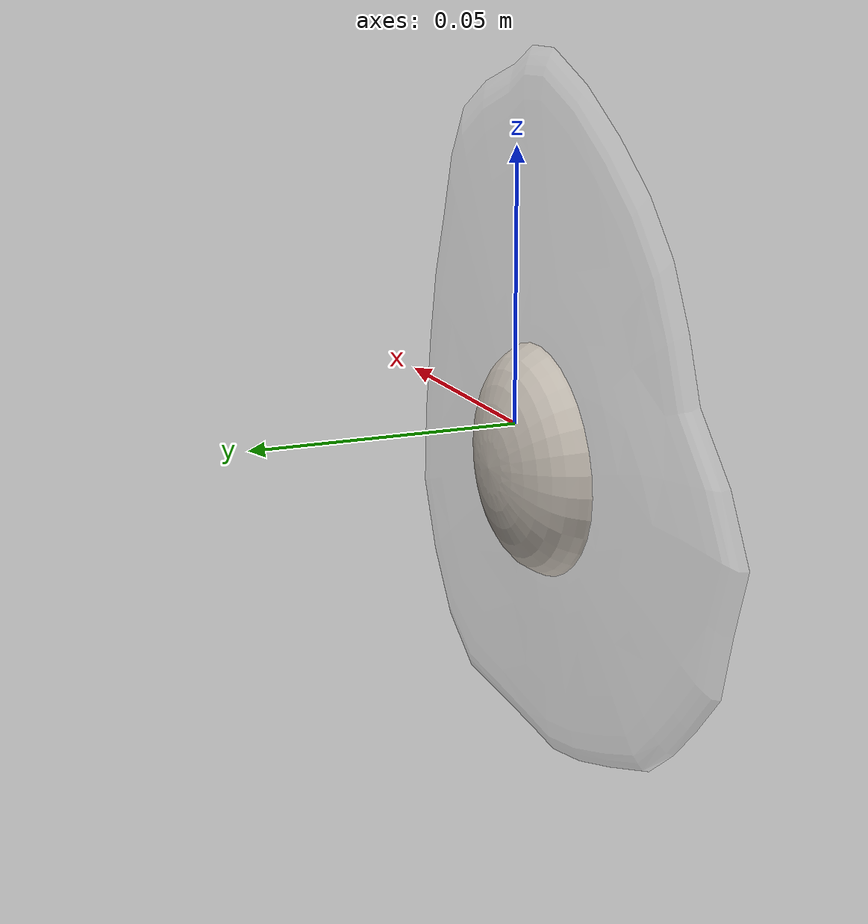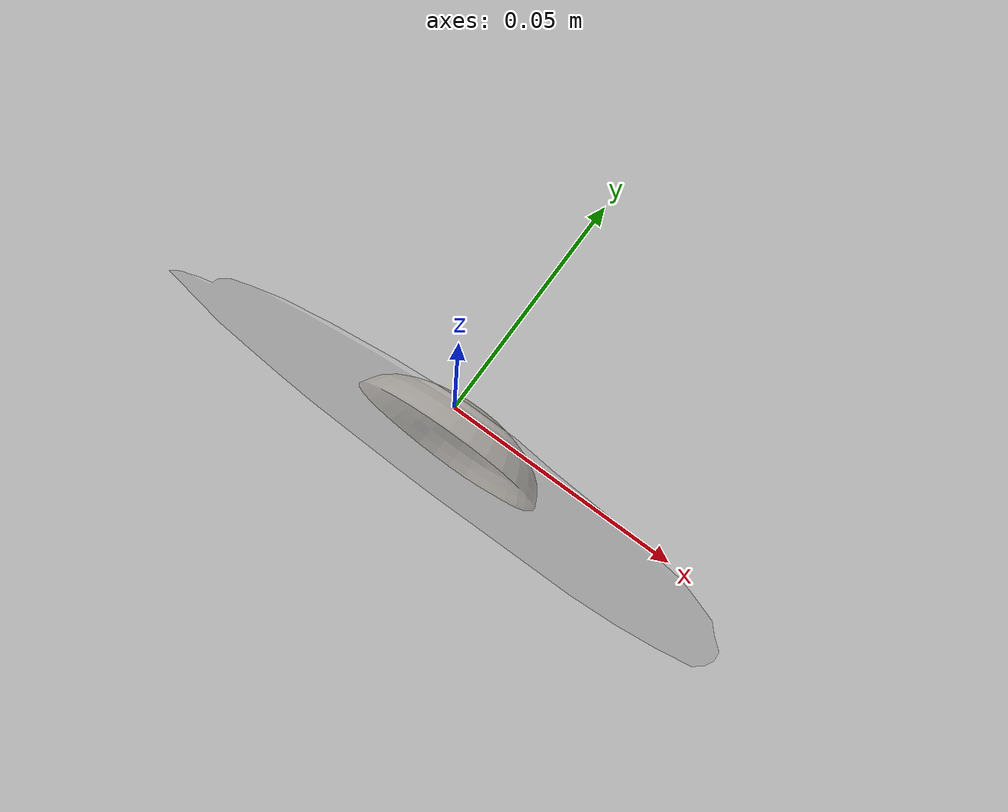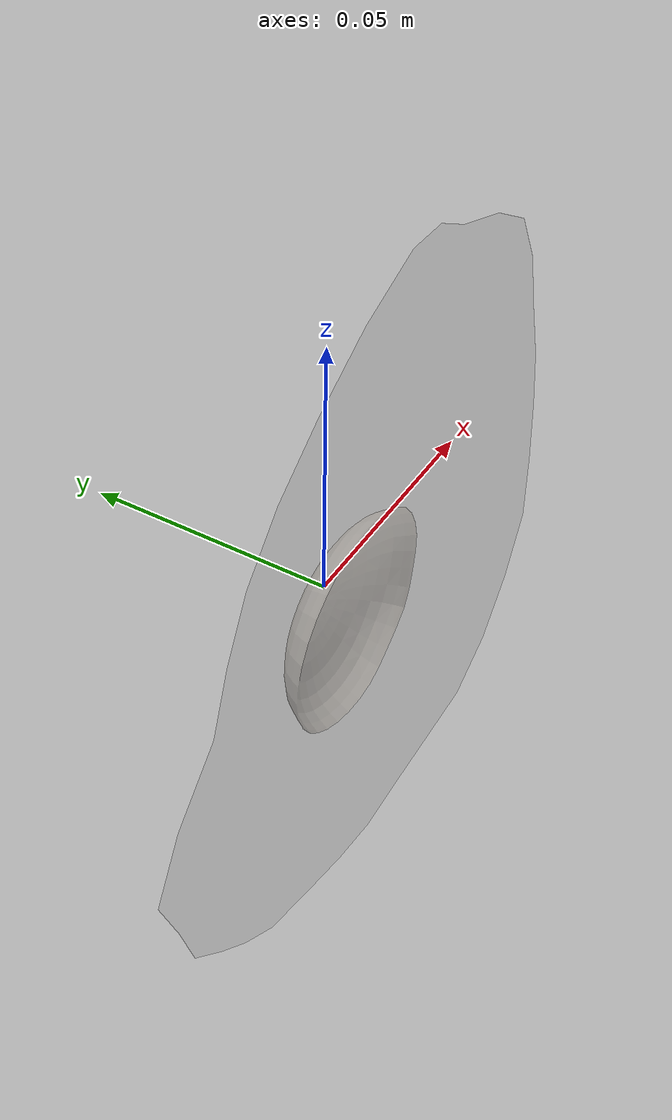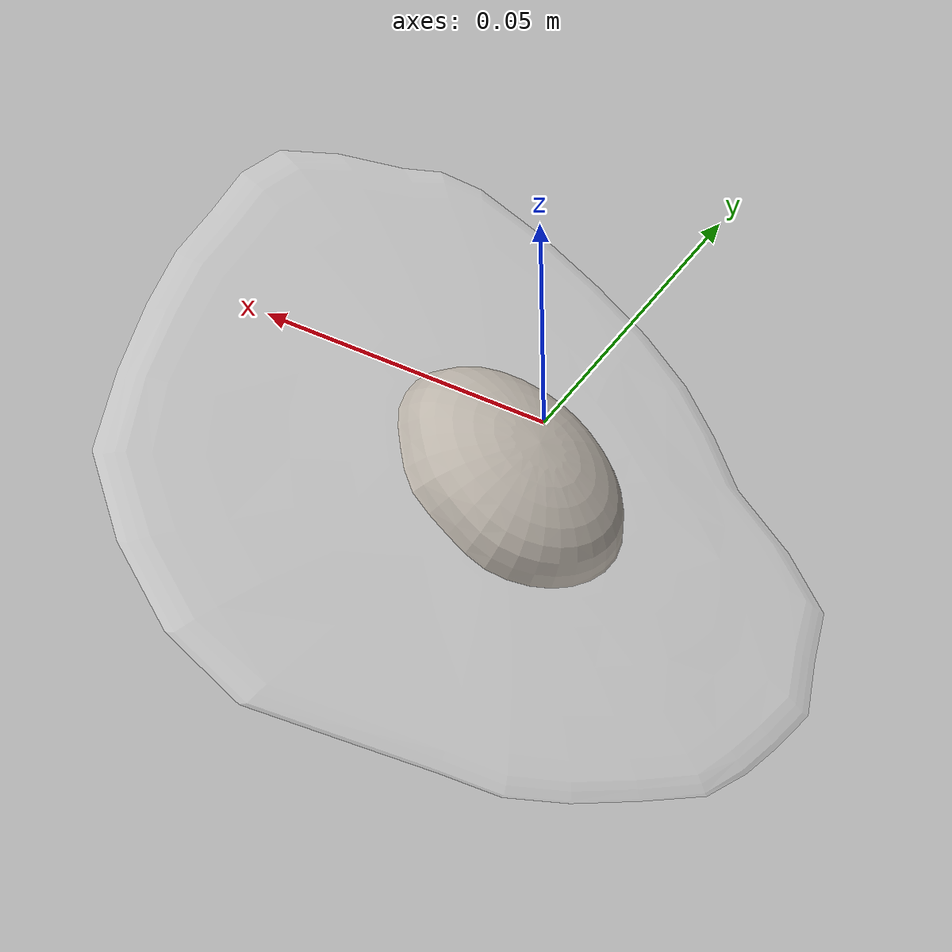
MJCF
<mujoco model="Egg_Cracked_12">
  <compiler autolimits="true" boundmass="0.01" angle="radian"/>
  <default>
    <default class="/">
      <default class="__VISUAL_MJT__">
        <geom contype="0" conaffinity="0" group="0"/>
      </default>
      <default class="__STRUCTURAL_MJT__">
        <geom contype="8" conaffinity="15" group="4" friction="0.90000000000000002 0.90000000000000002 0.001" solref="0.025000000000000001 1" solimp="0.998 0.998 0.001"/>
      </default>
      <default class="__DYNAMIC_MJT__">
        <geom contype="1" conaffinity="15" group="4" friction="0.90000000000000002 0.90000000000000002 0.001" solref="0.025000000000000001 1" solimp="0.998 0.998 0.001"/>
      </default>
    </default>
  </default>
  <asset>
    <texture name="Fried_Egg_White_Uncooked_Mat" type="2d" file="Fried_Egg_AlbedoTransparency.png"/>
    <material name="material_Fried_Egg_White_Uncooked_Mat" class="/" texture="Fried_Egg_White_Uncooked_Mat" specular="0.5" shininess="0.5" rgba="1 1 1 0.5"/>
    <texture name="Fried_Egg_Yolk_Mat" type="2d" file="Fried_Egg_AlbedoTransparency.png"/>
    <material name="material_Fried_Egg_Yolk_Mat" class="/" texture="Fried_Egg_Yolk_Mat" specular="0.5" shininess="0.5" rgba="1 1 1 1"/>
    <mesh name="Egg_Cracked_12_fried_egg_11_0" class="/" file="Egg_Cracked_12_fried_egg_11/Egg_Cracked_12_fried_egg_11_0.obj" scale="1 1 1"/>
    <mesh name="Egg_Cracked_12_fried_egg_11_1" class="/" file="Egg_Cracked_12_fried_egg_11/Egg_Cracked_12_fried_egg_11_1.obj" scale="1 1 1"/>
  </asset>
  <worldbody>
    <body name="Egg_Cracked_12">
      <joint name="Egg_Cracked_12_free" class="/" type="free" pos="0 0 0" axis="0 0 1" stiffness="0" range="0 0" armature="0" damping="0.10000000000000001" frictionloss="0"/>
      <body name="Egg_Cracked_12_fried_egg_11" pos="0.00132 -0.01023 -0.0082400000000000008" quat="1 0 0 0">
        <geom name="Egg_Cracked_12_fried_egg_11_0" class="__VISUAL_MJT__" type="mesh" material="material_Fried_Egg_White_Uncooked_Mat" shellinertia="false" mesh="Egg_Cracked_12_fried_egg_11_0"/>
        <geom name="Egg_Cracked_12_fried_egg_11_1" class="__VISUAL_MJT__" type="mesh" material="material_Fried_Egg_Yolk_Mat" shellinertia="false" mesh="Egg_Cracked_12_fried_egg_11_1"/>
        <geom name="Egg_Cracked_12_PrimitiveCollider_0" class="__DYNAMIC_MJT__" type="box" size="0.068972967565059662 0.010231256484985352 0.067480728030204773" rgba="0 1 0 1" pos="0.0013176426291465759 0.010231256484985352 0.0082420855760574341" quat="1 0 0 0"/>
      </body>
    </body>
  </worldbody>
</mujoco>
